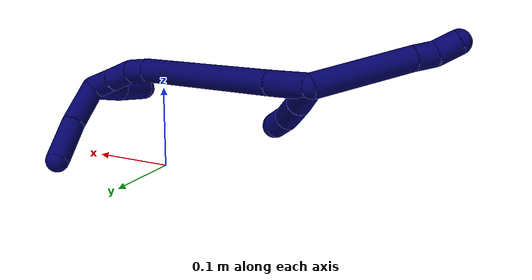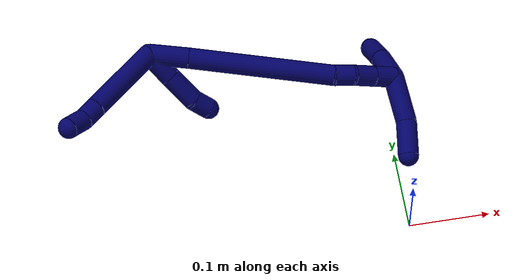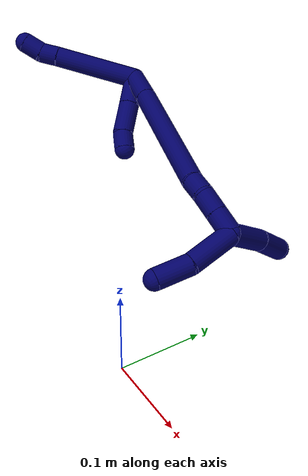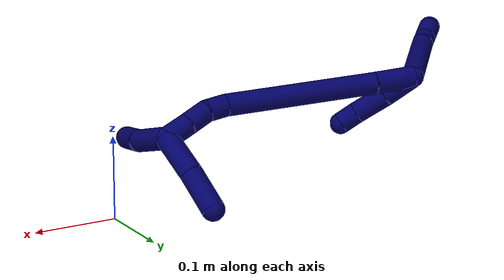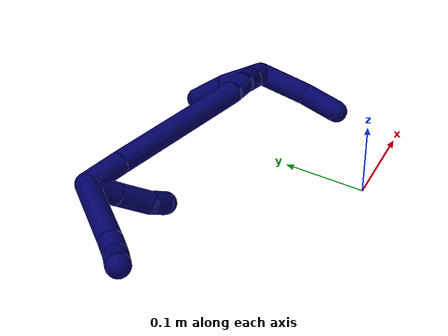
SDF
<sdf version="1.7">
 <world name="default">
  <model name="7">
   <static>0</static>
   <link name="7">
    <collision name="collision-cylinder-e_1_2_8">
     <pose>-0.040662 -0.015795 -0.027393 2.61857 -0.909834 -2.14025</pose>
     <geometry><cylinder><radius>0.0125</radius><length>0.10302</length></cylinder></geometry>
     <surface>
      <friction><ode><mu>1.16</mu><mu2>1.16</mu2><slip1>0</slip1><slip2>0</slip2></ode></friction>
      <contact><ode><kp>1e+06</kp><kd>1</kd><max_vel>0</max_vel><min_depth>0.001</min_depth></ode></contact>
     </surface>
    </collision>
    <visual name="visual-cylinder-e_1_2_8">
     <pose>-0.040662 -0.015795 -0.027393 2.61857 -0.909834 -2.14025</pose>
     <geometry><cylinder><radius>0.0125</radius><length>0.10302</length></cylinder></geometry>
     <material><ambient>0.003922 0 0.403922 1</ambient></material>
    </visual>
    <collision name="collision-cylinder-e_2_8_9">
     <pose>-0.090204 -0.034391 -0.060552 2.68932 -0.945521 -2.29614</pose>
     <geometry><cylinder><radius>0.0125</radius><length>0.021904</length></cylinder></geometry>
     <surface>
      <friction><ode><mu>1.16</mu><mu2>1.16</mu2><slip1>0</slip1><slip2>0</slip2></ode></friction>
      <contact><ode><kp>1e+06</kp><kd>1</kd><max_vel>0</max_vel><min_depth>0.001</min_depth></ode></contact>
     </surface>
    </collision>
    <visual name="visual-cylinder-e_2_8_9">
     <pose>-0.090204 -0.034391 -0.060552 2.68932 -0.945521 -2.29614</pose>
     <geometry><cylinder><radius>0.0125</radius><length>0.021904</length></cylinder></geometry>
     <material><ambient>0.003922 0 0.403922 1</ambient></material>
    </visual>
    <collision name="collision-cylinder-e_3_9_6">
     <pose>-0.10895 -0.043541 -0.07074 2.1791 -0.905791 -1.50032</pose>
     <geometry><cylinder><radius>0.0125</radius><length>0.025077</length></cylinder></geometry>
     <surface>
      <friction><ode><mu>1.16</mu><mu2>1.16</mu2><slip1>0</slip1><slip2>0</slip2></ode></friction>
      <contact><ode><kp>1e+06</kp><kd>1</kd><max_vel>0</max_vel><min_depth>0.001</min_depth></ode></contact>
     </surface>
    </collision>
    <visual name="visual-cylinder-e_3_9_6">
     <pose>-0.10895 -0.043541 -0.07074 2.1791 -0.905791 -1.50032</pose>
     <geometry><cylinder><radius>0.0125</radius><length>0.025077</length></cylinder></geometry>
     <material><ambient>0.003922 0 0.403922 1</ambient></material>
    </visual>
    <collision name="collision-cylinder-e_1_2_10">
     <pose>0.008079 0.009427 -0.013791 -2.54198 0.450453 -1.27565</pose>
     <geometry><cylinder><radius>0.0125</radius><length>0.037111</length></cylinder></geometry>
     <surface>
      <friction><ode><mu>1.16</mu><mu2>1.16</mu2><slip1>0</slip1><slip2>0</slip2></ode></friction>
      <contact><ode><kp>1e+06</kp><kd>1</kd><max_vel>0</max_vel><min_depth>0.001</min_depth></ode></contact>
     </surface>
    </collision>
    <visual name="visual-cylinder-e_1_2_10">
     <pose>0.008079 0.009427 -0.013791 -2.54198 0.450453 -1.27565</pose>
     <geometry><cylinder><radius>0.0125</radius><length>0.037111</length></cylinder></geometry>
     <material><ambient>0.003922 0 0.403922 1</ambient></material>
    </visual>
    <collision name="collision-cylinder-e_2_10_11">
     <pose>0.025551 0.028162 -0.043016 -2.59893 0.480458 -1.44392</pose>
     <geometry><cylinder><radius>0.0125</radius><length>0.040651</length></cylinder></geometry>
     <surface>
      <friction><ode><mu>1.16</mu><mu2>1.16</mu2><slip1>0</slip1><slip2>0</slip2></ode></friction>
      <contact><ode><kp>1e+06</kp><kd>1</kd><max_vel>0</max_vel><min_depth>0.001</min_depth></ode></contact>
     </surface>
    </collision>
    <visual name="visual-cylinder-e_2_10_11">
     <pose>0.025551 0.028162 -0.043016 -2.59893 0.480458 -1.44392</pose>
     <geometry><cylinder><radius>0.0125</radius><length>0.040651</length></cylinder></geometry>
     <material><ambient>0.003922 0 0.403922 1</ambient></material>
    </visual>
    <collision name="collision-cylinder-e_3_11_5">
     <pose>0.042431 0.042871 -0.06465 -2.42491 0.738526 -1.60363</pose>
     <geometry><cylinder><radius>0.0125</radius><length>0.022238</length></cylinder></geometry>
     <surface>
      <friction><ode><mu>1.16</mu><mu2>1.16</mu2><slip1>0</slip1><slip2>0</slip2></ode></friction>
      <contact><ode><kp>1e+06</kp><kd>1</kd><max_vel>0</max_vel><min_depth>0.001</min_depth></ode></contact>
     </surface>
    </collision>
    <visual name="visual-cylinder-e_3_11_5">
     <pose>0.042431 0.042871 -0.06465 -2.42491 0.738526 -1.60363</pose>
     <geometry><cylinder><radius>0.0125</radius><length>0.022238</length></cylinder></geometry>
     <material><ambient>0.003922 0 0.403922 1</ambient></material>
    </visual>
    <collision name="collision-cylinder-e_1_2_12">
     <pose>0.021467 0.001244 -0.009323 -3.00892 1.15784 -2.93901</pose>
     <geometry><cylinder><radius>0.0125</radius><length>0.046874</length></cylinder></geometry>
     <surface>
      <friction><ode><mu>1.16</mu><mu2>1.16</mu2><slip1>0</slip1><slip2>0</slip2></ode></friction>
      <contact><ode><kp>1e+06</kp><kd>1</kd><max_vel>0</max_vel><min_depth>0.001</min_depth></ode></contact>
     </surface>
    </collision>
    <visual name="visual-cylinder-e_1_2_12">
     <pose>0.021467 0.001244 -0.009323 -3.00892 1.15784 -2.93901</pose>
     <geometry><cylinder><radius>0.0125</radius><length>0.046874</length></cylinder></geometry>
     <material><ambient>0.003922 0 0.403922 1</ambient></material>
    </visual>
    <collision name="collision-cylinder-e_2_12_13">
     <pose>0.121701 0.005963 -0.055654 -3.04797 1.12988 -2.99405</pose>
     <geometry><cylinder><radius>0.0125</radius><length>0.174194</length></cylinder></geometry>
     <surface>
      <friction><ode><mu>1.16</mu><mu2>1.16</mu2><slip1>0</slip1><slip2>0</slip2></ode></friction>
      <contact><ode><kp>1e+06</kp><kd>1</kd><max_vel>0</max_vel><min_depth>0.001</min_depth></ode></contact>
     </surface>
    </collision>
    <visual name="visual-cylinder-e_2_12_13">
     <pose>0.121701 0.005963 -0.055654 -3.04797 1.12988 -2.99405</pose>
     <geometry><cylinder><radius>0.0125</radius><length>0.174194</length></cylinder></geometry>
     <material><ambient>0.003922 0 0.403922 1</ambient></material>
    </visual>
    <collision name="collision-cylinder-e_3_13_14">
     <pose>0.211746 0.011224 -0.095654 -2.60358 1.27113 -2.42628</pose>
     <geometry><cylinder><radius>0.0125</radius><length>0.023607</length></cylinder></geometry>
     <surface>
      <friction><ode><mu>1.16</mu><mu2>1.16</mu2><slip1>0</slip1><slip2>0</slip2></ode></friction>
      <contact><ode><kp>1e+06</kp><kd>1</kd><max_vel>0</max_vel><min_depth>0.001</min_depth></ode></contact>
     </surface>
    </collision>
    <visual name="visual-cylinder-e_3_13_14">
     <pose>0.211746 0.011224 -0.095654 -2.60358 1.27113 -2.42628</pose>
     <geometry><cylinder><radius>0.0125</radius><length>0.023607</length></cylinder></geometry>
     <material><ambient>0.003922 0 0.403922 1</ambient></material>
    </visual>
    <collision name="collision-cylinder-e_4_14_15">
     <pose>0.234832 0.018822 -0.101008 -1.95678 1.0824 -1.45792</pose>
     <geometry><cylinder><radius>0.0125</radius><length>0.026745</length></cylinder></geometry>
     <surface>
      <friction><ode><mu>1.16</mu><mu2>1.16</mu2><slip1>0</slip1><slip2>0</slip2></ode></friction>
      <contact><ode><kp>1e+06</kp><kd>1</kd><max_vel>0</max_vel><min_depth>0.001</min_depth></ode></contact>
     </surface>
    </collision>
    <visual name="visual-cylinder-e_4_14_15">
     <pose>0.234832 0.018822 -0.101008 -1.95678 1.0824 -1.45792</pose>
     <geometry><cylinder><radius>0.0125</radius><length>0.026745</length></cylinder></geometry>
     <material><ambient>0.003922 0 0.403922 1</ambient></material>
    </visual>
    <collision name="collision-cylinder-e_5_15_1">
     <pose>0.259354 0.030585 -0.106051 -1.99406 1.09659 -1.51428</pose>
     <geometry><cylinder><radius>0.0125</radius><length>0.028579</length></cylinder></geometry>
     <surface>
      <friction><ode><mu>1.16</mu><mu2>1.16</mu2><slip1>0</slip1><slip2>0</slip2></ode></friction>
      <contact><ode><kp>1e+06</kp><kd>1</kd><max_vel>0</max_vel><min_depth>0.001</min_depth></ode></contact>
     </surface>
    </collision>
    <visual name="visual-cylinder-e_5_15_1">
     <pose>0.259354 0.030585 -0.106051 -1.99406 1.09659 -1.51428</pose>
     <geometry><cylinder><radius>0.0125</radius><length>0.028579</length></cylinder></geometry>
     <material><ambient>0.003922 0 0.403922 1</ambient></material>
    </visual>
    <collision name="collision-cylinder-e_1_1_16">
     <pose>0.272627 0.054639 -0.089394 -0.752513 0.021131 -0.008349</pose>
     <geometry><cylinder><radius>0.0125</radius><length>0.052991</length></cylinder></geometry>
     <surface>
      <friction><ode><mu>1.16</mu><mu2>1.16</mu2><slip1>0</slip1><slip2>0</slip2></ode></friction>
      <contact><ode><kp>1e+06</kp><kd>1</kd><max_vel>0</max_vel><min_depth>0.001</min_depth></ode></contact>
     </surface>
    </collision>
    <visual name="visual-cylinder-e_1_1_16">
     <pose>0.272627 0.054639 -0.089394 -0.752513 0.021131 -0.008349</pose>
     <geometry><cylinder><radius>0.0125</radius><length>0.052991</length></cylinder></geometry>
     <material><ambient>0.003922 0 0.403922 1</ambient></material>
    </visual>
    <collision name="collision-cylinder-e_2_16_4">
     <pose>0.272883 0.090721 -0.054918 -0.870903 -0.012918 0.00601</pose>
     <geometry><cylinder><radius>0.0125</radius><length>0.047009</length></cylinder></geometry>
     <surface>
      <friction><ode><mu>1.16</mu><mu2>1.16</mu2><slip1>0</slip1><slip2>0</slip2></ode></friction>
      <contact><ode><kp>1e+06</kp><kd>1</kd><max_vel>0</max_vel><min_depth>0.001</min_depth></ode></contact>
     </surface>
    </collision>
    <visual name="visual-cylinder-e_2_16_4">
     <pose>0.272883 0.090721 -0.054918 -0.870903 -0.012918 0.00601</pose>
     <geometry><cylinder><radius>0.0125</radius><length>0.047009</length></cylinder></geometry>
     <material><ambient>0.003922 0 0.403922 1</ambient></material>
    </visual>
    <collision name="collision-cylinder-e_1_1_17">
     <pose>0.269823 0.039126 -0.13719 -3.05075 -0.078383 1.42368</pose>
     <geometry><cylinder><radius>0.0125</radius><length>0.05733</length></cylinder></geometry>
     <surface>
      <friction><ode><mu>1.16</mu><mu2>1.16</mu2><slip1>0</slip1><slip2>0</slip2></ode></friction>
      <contact><ode><kp>1e+06</kp><kd>1</kd><max_vel>0</max_vel><min_depth>0.001</min_depth></ode></contact>
     </surface>
    </collision>
    <visual name="visual-cylinder-e_1_1_17">
     <pose>0.269823 0.039126 -0.13719 -3.05075 -0.078383 1.42368</pose>
     <geometry><cylinder><radius>0.0125</radius><length>0.05733</length></cylinder></geometry>
     <material><ambient>0.003922 0 0.403922 1</ambient></material>
    </visual>
    <collision name="collision-cylinder-e_2_17_3">
     <pose>0.261298 0.041402 -0.186036 3.12608 -0.298765 -3.03864</pose>
     <geometry><cylinder><radius>0.0125</radius><length>0.04267</length></cylinder></geometry>
     <surface>
      <friction><ode><mu>1.16</mu><mu2>1.16</mu2><slip1>0</slip1><slip2>0</slip2></ode></friction>
      <contact><ode><kp>1e+06</kp><kd>1</kd><max_vel>0</max_vel><min_depth>0.001</min_depth></ode></contact>
     </surface>
    </collision>
    <visual name="visual-cylinder-e_2_17_3">
     <pose>0.261298 0.041402 -0.186036 3.12608 -0.298765 -3.03864</pose>
     <geometry><cylinder><radius>0.0125</radius><length>0.04267</length></cylinder></geometry>
     <material><ambient>0.003922 0 0.403922 1</ambient></material>
    </visual>
    <collision name="collision-sphere-3">
     <pose>0.255019 0.041086 -0.206424 0 -0 0</pose>
     <geometry><sphere><radius>0.0125</radius></sphere></geometry>
     <surface>
      <friction><ode><mu>1.16</mu><mu2>1.16</mu2><slip1>0</slip1><slip2>0</slip2></ode></friction>
      <contact><ode><kp>1e+06</kp><kd>1</kd><max_vel>0</max_vel><min_depth>0.001</min_depth></ode></contact>
     </surface>
    </collision>
    <visual name="visual-sphere-3">
     <pose>0.255019 0.041086 -0.206424 0 -0 0</pose>
     <geometry><sphere><radius>0.0125</radius></sphere></geometry>
     <material><ambient>0.003922 0 0.403922 1</ambient></material>
    </visual>
    <collision name="collision-sphere-17">
     <pose>0.267578 0.041718 -0.165649 0 -0 0</pose>
     <geometry><sphere><radius>0.0125</radius></sphere></geometry>
     <surface>
      <friction><ode><mu>1.16</mu><mu2>1.16</mu2><slip1>0</slip1><slip2>0</slip2></ode></friction>
      <contact><ode><kp>1e+06</kp><kd>1</kd><max_vel>0</max_vel><min_depth>0.001</min_depth></ode></contact>
     </surface>
    </collision>
    <visual name="visual-sphere-17">
     <pose>0.267578 0.041718 -0.165649 0 -0 0</pose>
     <geometry><sphere><radius>0.0125</radius></sphere></geometry>
     <material><ambient>0.003922 0 0.403922 1</ambient></material>
    </visual>
    <collision name="collision-sphere-4">
     <pose>0.27258 0.108698 -0.03978 0 -0 0</pose>
     <geometry><sphere><radius>0.0125</radius></sphere></geometry>
     <surface>
      <friction><ode><mu>1.16</mu><mu2>1.16</mu2><slip1>0</slip1><slip2>0</slip2></ode></friction>
      <contact><ode><kp>1e+06</kp><kd>1</kd><max_vel>0</max_vel><min_depth>0.001</min_depth></ode></contact>
     </surface>
    </collision>
    <visual name="visual-sphere-4">
     <pose>0.27258 0.108698 -0.03978 0 -0 0</pose>
     <geometry><sphere><radius>0.0125</radius></sphere></geometry>
     <material><ambient>0.003922 0 0.403922 1</ambient></material>
    </visual>
    <collision name="collision-sphere-16">
     <pose>0.273187 0.072744 -0.070057 0 -0 0</pose>
     <geometry><sphere><radius>0.0125</radius></sphere></geometry>
     <surface>
      <friction><ode><mu>1.16</mu><mu2>1.16</mu2><slip1>0</slip1><slip2>0</slip2></ode></friction>
      <contact><ode><kp>1e+06</kp><kd>1</kd><max_vel>0</max_vel><min_depth>0.001</min_depth></ode></contact>
     </surface>
    </collision>
    <visual name="visual-sphere-16">
     <pose>0.273187 0.072744 -0.070057 0 -0 0</pose>
     <geometry><sphere><radius>0.0125</radius></sphere></geometry>
     <material><ambient>0.003922 0 0.403922 1</ambient></material>
    </visual>
    <collision name="collision-sphere-1">
     <pose>0.272067 0.036534 -0.108731 0 -0 0</pose>
     <geometry><sphere><radius>0.0125</radius></sphere></geometry>
     <surface>
      <friction><ode><mu>1.16</mu><mu2>1.16</mu2><slip1>0</slip1><slip2>0</slip2></ode></friction>
      <contact><ode><kp>1e+06</kp><kd>1</kd><max_vel>0</max_vel><min_depth>0.001</min_depth></ode></contact>
     </surface>
    </collision>
    <visual name="visual-sphere-1">
     <pose>0.272067 0.036534 -0.108731 0 -0 0</pose>
     <geometry><sphere><radius>0.0125</radius></sphere></geometry>
     <material><ambient>0.003922 0 0.403922 1</ambient></material>
    </visual>
    <collision name="collision-sphere-15">
     <pose>0.246642 0.024635 -0.103371 0 -0 0</pose>
     <geometry><sphere><radius>0.0125</radius></sphere></geometry>
     <surface>
      <friction><ode><mu>1.16</mu><mu2>1.16</mu2><slip1>0</slip1><slip2>0</slip2></ode></friction>
      <contact><ode><kp>1e+06</kp><kd>1</kd><max_vel>0</max_vel><min_depth>0.001</min_depth></ode></contact>
     </surface>
    </collision>
    <visual name="visual-sphere-15">
     <pose>0.246642 0.024635 -0.103371 0 -0 0</pose>
     <geometry><sphere><radius>0.0125</radius></sphere></geometry>
     <material><ambient>0.003922 0 0.403922 1</ambient></material>
    </visual>
    <collision name="collision-sphere-14">
     <pose>0.223023 0.013009 -0.098646 0 -0 0</pose>
     <geometry><sphere><radius>0.0125</radius></sphere></geometry>
     <surface>
      <friction><ode><mu>1.16</mu><mu2>1.16</mu2><slip1>0</slip1><slip2>0</slip2></ode></friction>
      <contact><ode><kp>1e+06</kp><kd>1</kd><max_vel>0</max_vel><min_depth>0.001</min_depth></ode></contact>
     </surface>
    </collision>
    <visual name="visual-sphere-14">
     <pose>0.223023 0.013009 -0.098646 0 -0 0</pose>
     <geometry><sphere><radius>0.0125</radius></sphere></geometry>
     <material><ambient>0.003922 0 0.403922 1</ambient></material>
    </visual>
    <collision name="collision-sphere-13">
     <pose>0.200468 0.009438 -0.092662 0 -0 0</pose>
     <geometry><sphere><radius>0.0125</radius></sphere></geometry>
     <surface>
      <friction><ode><mu>1.16</mu><mu2>1.16</mu2><slip1>0</slip1><slip2>0</slip2></ode></friction>
      <contact><ode><kp>1e+06</kp><kd>1</kd><max_vel>0</max_vel><min_depth>0.001</min_depth></ode></contact>
     </surface>
    </collision>
    <visual name="visual-sphere-13">
     <pose>0.200468 0.009438 -0.092662 0 -0 0</pose>
     <geometry><sphere><radius>0.0125</radius></sphere></geometry>
     <material><ambient>0.003922 0 0.403922 1</ambient></material>
    </visual>
    <collision name="collision-sphere-12">
     <pose>0.042934 0.002488 -0.018646 0 -0 0</pose>
     <geometry><sphere><radius>0.0125</radius></sphere></geometry>
     <surface>
      <friction><ode><mu>1.16</mu><mu2>1.16</mu2><slip1>0</slip1><slip2>0</slip2></ode></friction>
      <contact><ode><kp>1e+06</kp><kd>1</kd><max_vel>0</max_vel><min_depth>0.001</min_depth></ode></contact>
     </surface>
    </collision>
    <visual name="visual-sphere-12">
     <pose>0.042934 0.002488 -0.018646 0 -0 0</pose>
     <geometry><sphere><radius>0.0125</radius></sphere></geometry>
     <material><ambient>0.003922 0 0.403922 1</ambient></material>
    </visual>
    <collision name="collision-sphere-5">
     <pose>0.049916 0.048272 -0.07085 0 -0 0</pose>
     <geometry><sphere><radius>0.0125</radius></sphere></geometry>
     <surface>
      <friction><ode><mu>1.16</mu><mu2>1.16</mu2><slip1>0</slip1><slip2>0</slip2></ode></friction>
      <contact><ode><kp>1e+06</kp><kd>1</kd><max_vel>0</max_vel><min_depth>0.001</min_depth></ode></contact>
     </surface>
    </collision>
    <visual name="visual-sphere-5">
     <pose>0.049916 0.048272 -0.07085 0 -0 0</pose>
     <geometry><sphere><radius>0.0125</radius></sphere></geometry>
     <material><ambient>0.003922 0 0.403922 1</ambient></material>
    </visual>
    <collision name="collision-sphere-8">
     <pose>-0.081324 -0.031589 -0.054787 0 -0 0</pose>
     <geometry><sphere><radius>0.0125</radius></sphere></geometry>
     <surface>
      <friction><ode><mu>1.16</mu><mu2>1.16</mu2><slip1>0</slip1><slip2>0</slip2></ode></friction>
      <contact><ode><kp>1e+06</kp><kd>1</kd><max_vel>0</max_vel><min_depth>0.001</min_depth></ode></contact>
     </surface>
    </collision>
    <visual name="visual-sphere-8">
     <pose>-0.081324 -0.031589 -0.054787 0 -0 0</pose>
     <geometry><sphere><radius>0.0125</radius></sphere></geometry>
     <material><ambient>0.003922 0 0.403922 1</ambient></material>
    </visual>
    <collision name="collision-sphere-2">
     <geometry><sphere><radius>0.0125</radius></sphere></geometry>
     <surface>
      <friction><ode><mu>1.16</mu><mu2>1.16</mu2><slip1>0</slip1><slip2>0</slip2></ode></friction>
      <contact><ode><kp>1e+06</kp><kd>1</kd><max_vel>0</max_vel><min_depth>0.001</min_depth></ode></contact>
     </surface>
    </collision>
    <visual name="visual-sphere-2">
     <geometry><sphere><radius>0.0125</radius></sphere></geometry>
     <material><ambient>0.003922 0 0.403922 1</ambient></material>
    </visual>
    <collision name="collision-sphere-9">
     <pose>-0.099083 -0.037192 -0.066318 0 -0 0</pose>
     <geometry><sphere><radius>0.0125</radius></sphere></geometry>
     <surface>
      <friction><ode><mu>1.16</mu><mu2>1.16</mu2><slip1>0</slip1><slip2>0</slip2></ode></friction>
      <contact><ode><kp>1e+06</kp><kd>1</kd><max_vel>0</max_vel><min_depth>0.001</min_depth></ode></contact>
     </surface>
    </collision>
    <visual name="visual-sphere-9">
     <pose>-0.099083 -0.037192 -0.066318 0 -0 0</pose>
     <geometry><sphere><radius>0.0125</radius></sphere></geometry>
     <material><ambient>0.003922 0 0.403922 1</ambient></material>
    </visual>
    <collision name="collision-sphere-6">
     <pose>-0.118817 -0.04989 -0.075161 0 -0 0</pose>
     <geometry><sphere><radius>0.0125</radius></sphere></geometry>
     <surface>
      <friction><ode><mu>1.16</mu><mu2>1.16</mu2><slip1>0</slip1><slip2>0</slip2></ode></friction>
      <contact><ode><kp>1e+06</kp><kd>1</kd><max_vel>0</max_vel><min_depth>0.001</min_depth></ode></contact>
     </surface>
    </collision>
    <visual name="visual-sphere-6">
     <pose>-0.118817 -0.04989 -0.075161 0 -0 0</pose>
     <geometry><sphere><radius>0.0125</radius></sphere></geometry>
     <material><ambient>0.003922 0 0.403922 1</ambient></material>
    </visual>
    <collision name="collision-sphere-10">
     <pose>0.016157 0.018854 -0.027581 0 -0 0</pose>
     <geometry><sphere><radius>0.0125</radius></sphere></geometry>
     <surface>
      <friction><ode><mu>1.16</mu><mu2>1.16</mu2><slip1>0</slip1><slip2>0</slip2></ode></friction>
      <contact><ode><kp>1e+06</kp><kd>1</kd><max_vel>0</max_vel><min_depth>0.001</min_depth></ode></contact>
     </surface>
    </collision>
    <visual name="visual-sphere-10">
     <pose>0.016157 0.018854 -0.027581 0 -0 0</pose>
     <geometry><sphere><radius>0.0125</radius></sphere></geometry>
     <material><ambient>0.003922 0 0.403922 1</ambient></material>
    </visual>
    <collision name="collision-sphere-11">
     <pose>0.034946 0.03747 -0.058451 0 -0 0</pose>
     <geometry><sphere><radius>0.0125</radius></sphere></geometry>
     <surface>
      <friction><ode><mu>1.16</mu><mu2>1.16</mu2><slip1>0</slip1><slip2>0</slip2></ode></friction>
      <contact><ode><kp>1e+06</kp><kd>1</kd><max_vel>0</max_vel><min_depth>0.001</min_depth></ode></contact>
     </surface>
    </collision>
    <visual name="visual-sphere-11">
     <pose>0.034946 0.03747 -0.058451 0 -0 0</pose>
     <geometry><sphere><radius>0.0125</radius></sphere></geometry>
     <material><ambient>0.003922 0 0.403922 1</ambient></material>
    </visual>
    <inertial>
     <pose>0.117568 0.01718 -0.067819 0 -0 0</pose>
     <mass>0.75</mass>
     <inertia>
      <ixx>-0.000268</ixx>
      <ixy>0</ixy>
      <ixz>0</ixz>
      <iyy>0.000496</iyy>
      <iyz>0</iyz>
      <izz>-0.000385</izz>
     </inertia>
    </inertial>
   </link>
   <pose>-0.285935 0.19062 0.174437 -1.40771 -0.031723 0.172325</pose>
  </model>
 </world>
</sdf>
